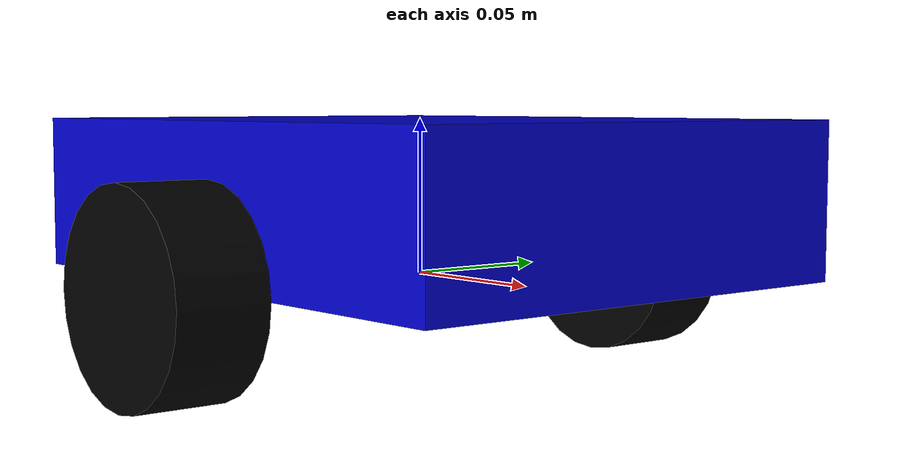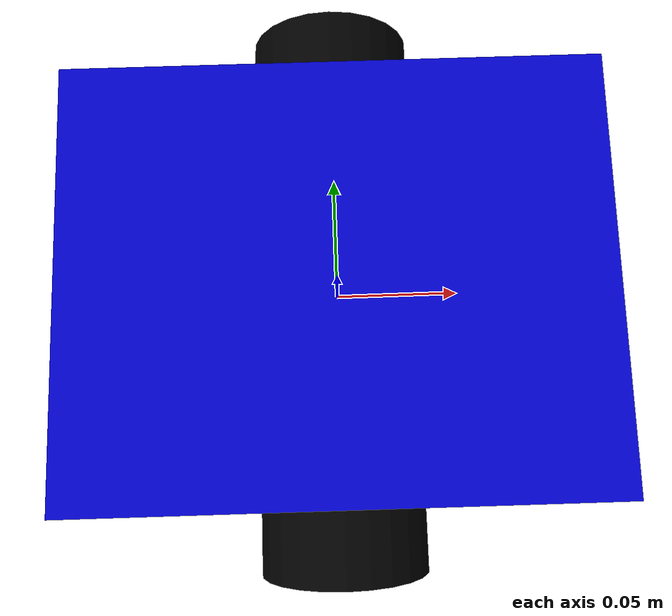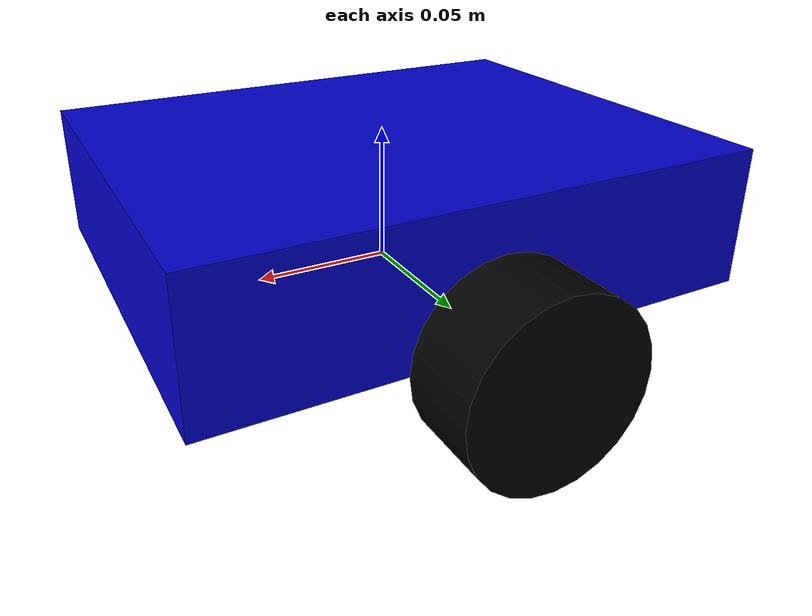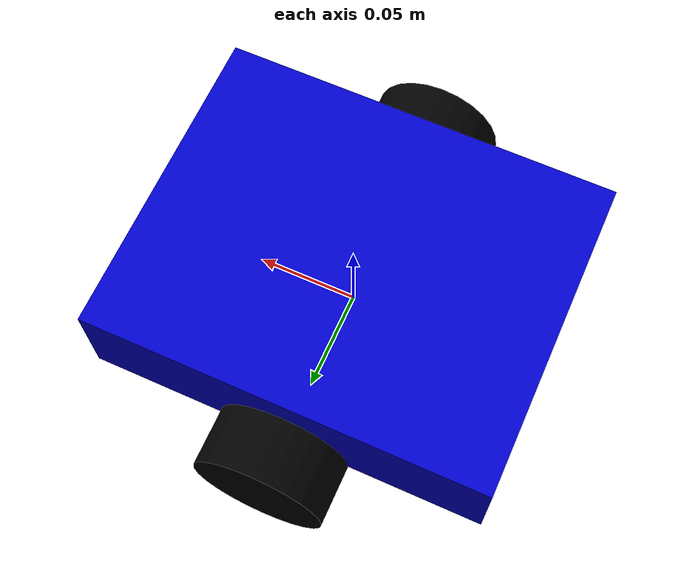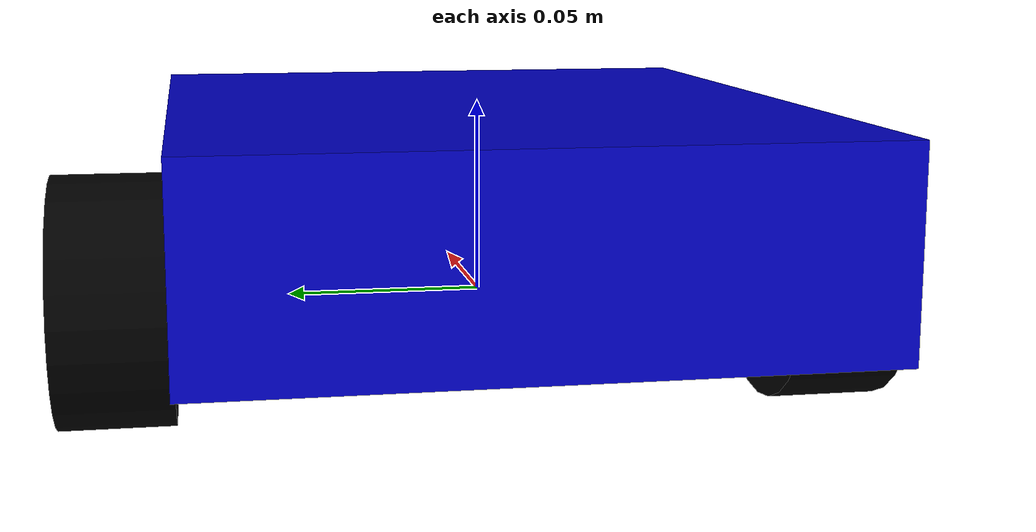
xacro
<?xml version="1.0"?>
<robot xmlns:xacro="http://www.ros.org/wiki/xacro" name="r1_robot">

  <!-- 1. 包含物理结构文件 -->
  <xacro:include filename="$(find r1_description)/urdf/r1_core.xacro"/>

  <!-- 2. 包含 ros2_control 控制接口文件 -->
  <xacro:include filename="$(find r1_description)/urdf/r1_ros2_control.xacro"/>

  <!-- 3. 调用 ros2_control 宏，生成控制标签 -->
  <!-- 注意：这里的 joint 名需要和 r1_core.xacro 里定义的一致 -->
  <xacro:r1_ros2_control name="R1System" prefix=""/>

</robot>

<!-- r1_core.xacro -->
<robot xmlns:xacro="http://www.ros.org/wiki/xacro">

  <!-- 定义一些可复用的属性 -->
  <xacro:property name="base_length" value="0.20"/>
  <xacro:property name="base_width" value="0.16"/>
  <xacro:property name="base_height" value="0.05"/>
  <xacro:property name="wheel_radius" value="0.033"/>
  <xacro:property name="wheel_width" value="0.03"/>
  <xacro:property name="wheel_offset_x" value="0.0"/>
  <xacro:property name="wheel_offset_y" value="${base_width/2 + wheel_width/2}"/>
  <xacro:property name="wheel_offset_z" value="0.0"/>

  <!-- 材质定义 -->
  <material name="blue">
    <color rgba="0 0 0.8 1"/>
  </material>
  <material name="black">
    <color rgba="0 0 0 1"/>
  </material>
  <material name="red">
    <color rgba="0.8 0 0 1"/>
  </material>

  <!-- 1. 车体基座 (base_link) -->
  <link name="base_link">
    <visual>
      <origin xyz="0 0 ${base_height/2}" rpy="0 0 0"/>
      <geometry>
        <box size="${base_length} ${base_width} ${base_height}"/>
      </geometry>
      <material name="blue"/>
    </visual>
    <collision>
      <origin xyz="0 0 ${base_height/2}" rpy="0 0 0"/>
      <geometry>
        <box size="${base_length} ${base_width} ${base_height}"/>
      </geometry>
    </collision>
    <inertial>
      <origin xyz="0 0 ${base_height/2}" rpy="0 0 0"/>
      <mass value="0.5"/>
      <inertia ixx="0.001" ixy="0" ixz="0" iyy="0.001" iyz="0" izz="0.001"/>
    </inertial>
  </link>

  <!-- 2. 驱动轮宏定义 (避免重复代码) -->
  <xacro:macro name="wheel" params="prefix reflect">
    <!-- 轮子 link -->
    <link name="${prefix}_wheel_link">
      <visual>
        <origin xyz="0 0 0" rpy="0 0 0"/>
        <geometry>
          <cylinder radius="${wheel_radius}" length="${wheel_width}"/>
        </geometry>
        <material name="black"/>
      </visual>
      <collision>
        <origin xyz="0 0 0" rpy="0 0 0"/>
        <geometry>
          <cylinder radius="${wheel_radius}" length="${wheel_width}"/>
        </geometry>
      </collision>
      <inertial>
        <origin xyz="0 0 0" rpy="0 0 0"/>
        <mass value="0.1"/>
        <inertia ixx="0.0001" ixy="0" ixz="0" iyy="0.0001" iyz="0" izz="0.0001"/>
      </inertial>
    </link>

    <!-- 轮子关节 -->
    <joint name="${prefix}_wheel_joint" type="continuous">
      <parent link="base_link"/>
      <child link="${prefix}_wheel_link"/>
      <origin xyz="${wheel_offset_x} ${reflect * wheel_offset_y} ${wheel_offset_z}"
              rpy="${-pi/2} 0 0"/>
      <axis xyz="0 0 1"/>
    </joint>
  </xacro:macro>

  <!-- 实例化左右两个驱动轮 -->
  <xacro:wheel prefix="left" reflect="1"/>
  <xacro:wheel prefix="right" reflect="-1"/>

  <!-- 3. 万向轮 (万向轮) -->
  <link name="caster_wheel_link">
    <visual>
      <origin xyz="0 0 0" rpy="0 0 0"/>
      <geometry>
        <sphere radius="0.015"/>
      </geometry>
      <material name="red"/>
    </visual>
    <collision>
      <origin xyz="0 0 0" rpy="0 0 0"/>
      <geometry>
        <sphere radius="0.015"/>
      </geometry>
    </collision>
    <inertial>
      <origin xyz="0 0 0" rpy="0 0 0"/>
      <mass value="0.05"/>
      <inertia ixx="0.00001" ixy="0" ixz="0" iyy="0.00001" iyz="0" izz="0.00001"/>
    </inertial>
  </link>

  <joint name="caster_wheel_joint" type="fixed">
    <parent link="base_link"/>
    <child link="caster_wheel_link"/>
    <!-- 万向轮位置需要根据你的R1小车实际情况调整 -->
    <origin xyz="-0.08 0 0.015" rpy="0 0 0"/>
  </joint>

</robot>
